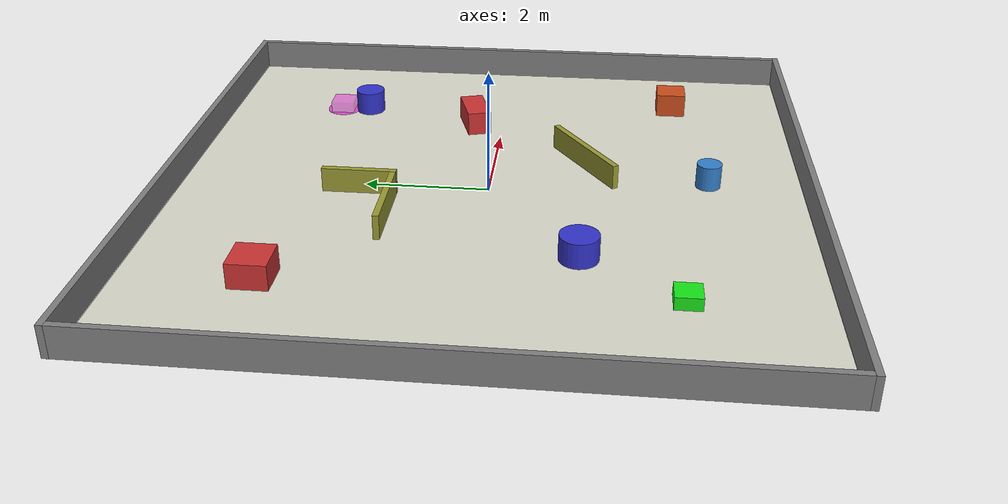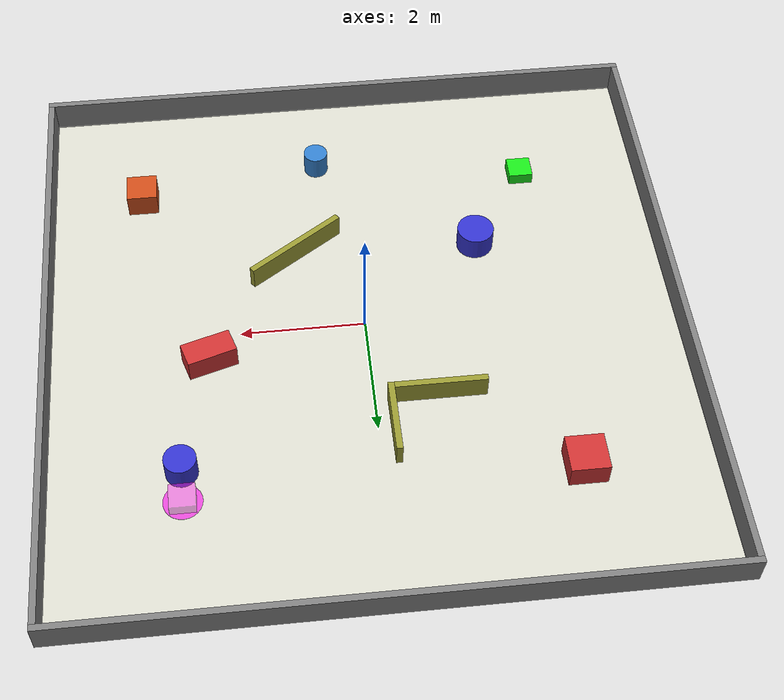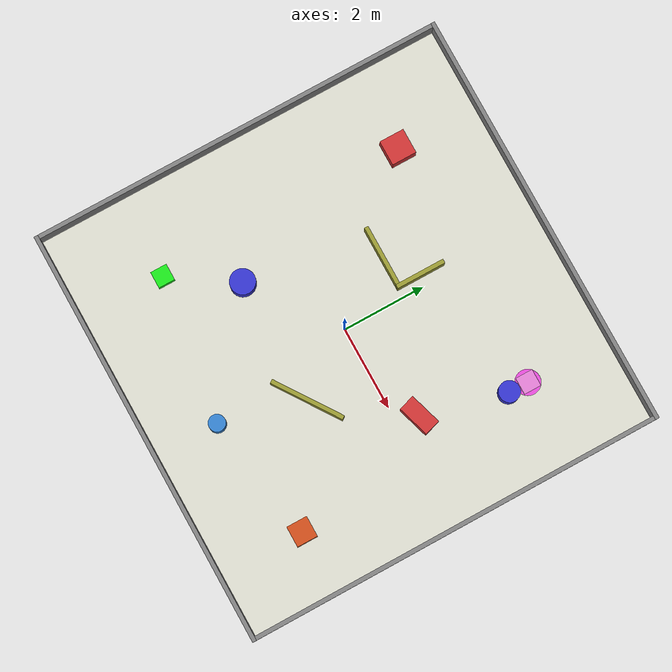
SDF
<?xml version="1.0" ?>
<sdf version="1.6">
  <world name="swarm_arena">

    <!-- Physics -->
    <physics type="ode">
      <real_time_update_rate>1000.0</real_time_update_rate>
      <!-- 1000 updates/s * 3 ms/step gives a 3.0 target RTF. -->
      <max_step_size>0.003</max_step_size>
      <real_time_factor>3.0</real_time_factor>
      <ode>
        <solver>
          <type>quick</type>
          <iters>50</iters>
          <precon_iters>0</precon_iters>
          <sor>1.400000</sor>
          <use_dynamic_moi_rescaling>1</use_dynamic_moi_rescaling>
        </solver>
        <constraints>
          <cfm>0.00001</cfm>
          <erp>0.2</erp>
          <contact_max_correcting_vel>10.0</contact_max_correcting_vel>
          <contact_surface_layer>0.001</contact_surface_layer>
        </constraints>
      </ode>
    </physics>

    <!-- Lighting -->
    <include>
      <uri>model://sun</uri>
    </include>

    <!-- Ground plane -->
    <include>
      <uri>model://ground_plane</uri>
    </include>

    <!-- ==================== ARENA FLOOR (visual reference) ==================== -->
    <model name="arena_floor">
      <static>true</static>
      <link name="link">
        <visual name="visual">
          <geometry>
            <plane><normal>0 0 1</normal><size>10 10</size></plane>
          </geometry>
          <material>
            <ambient>0.85 0.85 0.80 1</ambient>
            <diffuse>0.85 0.85 0.80 1</diffuse>
          </material>
        </visual>
      </link>
      <pose>0 0 0.001 0 0 0</pose>
    </model>

    <!-- ==================== ARENA BOUNDARY WALLS ==================== -->
    <!-- North wall -->
    <model name="wall_north">
      <static>true</static>
      <link name="link">
        <collision name="collision">
          <geometry><box><size>10.2 0.1 0.5</size></box></geometry>
        </collision>
        <visual name="visual">
          <geometry><box><size>10.2 0.1 0.5</size></box></geometry>
          <material>
            <ambient>0.4 0.4 0.4 1</ambient>
            <diffuse>0.5 0.5 0.5 1</diffuse>
          </material>
        </visual>
      </link>
      <pose>0 5.05 0.25 0 0 0</pose>
    </model>

    <!-- South wall -->
    <model name="wall_south">
      <static>true</static>
      <link name="link">
        <collision name="collision">
          <geometry><box><size>10.2 0.1 0.5</size></box></geometry>
        </collision>
        <visual name="visual">
          <geometry><box><size>10.2 0.1 0.5</size></box></geometry>
          <material>
            <ambient>0.4 0.4 0.4 1</ambient>
            <diffuse>0.5 0.5 0.5 1</diffuse>
          </material>
        </visual>
      </link>
      <pose>0 -5.05 0.25 0 0 0</pose>
    </model>

    <!-- East wall -->
    <model name="wall_east">
      <static>true</static>
      <link name="link">
        <collision name="collision">
          <geometry><box><size>0.1 10.0 0.5</size></box></geometry>
        </collision>
        <visual name="visual">
          <geometry><box><size>0.1 10.0 0.5</size></box></geometry>
          <material>
            <ambient>0.4 0.4 0.4 1</ambient>
            <diffuse>0.5 0.5 0.5 1</diffuse>
          </material>
        </visual>
      </link>
      <pose>5.05 0 0.25 0 0 0</pose>
    </model>

    <!-- West wall -->
    <model name="wall_west">
      <static>true</static>
      <link name="link">
        <collision name="collision">
          <geometry><box><size>0.1 10.0 0.5</size></box></geometry>
        </collision>
        <visual name="visual">
          <geometry><box><size>0.1 10.0 0.5</size></box></geometry>
          <material>
            <ambient>0.4 0.4 0.4 1</ambient>
            <diffuse>0.5 0.5 0.5 1</diffuse>
          </material>
        </visual>
      </link>
      <pose>-5.05 0 0.25 0 0 0</pose>
    </model>

    <!-- ==================== STATIC OBSTACLES ==================== -->

    <!-- Box obstacle 1 (top-left area) -->
    <model name="obstacle_box_1">
      <static>true</static>
      <link name="link">
        <collision name="collision">
          <geometry><box><size>0.6 0.6 0.4</size></box></geometry>
        </collision>
        <visual name="visual">
          <geometry><box><size>0.6 0.6 0.4</size></box></geometry>
          <material>
            <ambient>0.8 0.2 0.2 1</ambient>
            <diffuse>0.8 0.2 0.2 1</diffuse>
          </material>
        </visual>
      </link>
      <pose>-3.0 3.0 0.2 0 0 0</pose>
    </model>

    <!-- Box obstacle 2 (center-right) -->
    <model name="obstacle_box_2">
      <static>true</static>
      <link name="link">
        <collision name="collision">
          <geometry><box><size>0.8 0.4 0.4</size></box></geometry>
        </collision>
        <visual name="visual">
          <geometry><box><size>0.8 0.4 0.4</size></box></geometry>
          <material>
            <ambient>0.8 0.2 0.2 1</ambient>
            <diffuse>0.8 0.2 0.2 1</diffuse>
          </material>
        </visual>
      </link>
      <pose>2.5 0.5 0.2 0 0 0.3</pose>
    </model>

    <!-- Box obstacle 3 (bottom-right) -->
    <model name="obstacle_box_3">
      <static>true</static>
      <link name="link">
        <collision name="collision">
          <geometry><box><size>0.5 0.5 0.4</size></box></geometry>
        </collision>
        <visual name="visual">
          <geometry><box><size>0.5 0.5 0.4</size></box></geometry>
          <material>
            <ambient>0.8 0.3 0.1 1</ambient>
            <diffuse>0.8 0.3 0.1 1</diffuse>
          </material>
        </visual>
      </link>
      <pose>3.5 -3.0 0.2 0 0 0</pose>
    </model>

    <!-- Cylinder obstacle 1 (top-right) -->
    <model name="obstacle_cyl_1">
      <static>true</static>
      <link name="link">
        <collision name="collision">
          <geometry><cylinder><radius>0.25</radius><length>0.4</length></cylinder></geometry>
        </collision>
        <visual name="visual">
          <geometry><cylinder><radius>0.25</radius><length>0.4</length></cylinder></geometry>
          <material>
            <ambient>0.2 0.2 0.8 1</ambient>
            <diffuse>0.2 0.2 0.8 1</diffuse>
          </material>
        </visual>
      </link>
      <pose>3.0 2.5 0.2 0 0 0</pose>
    </model>

    <!-- Cylinder obstacle 2 (center-left) -->
    <model name="obstacle_cyl_2">
      <static>true</static>
      <link name="link">
        <collision name="collision">
          <geometry><cylinder><radius>0.3</radius><length>0.4</length></cylinder></geometry>
        </collision>
        <visual name="visual">
          <geometry><cylinder><radius>0.3</radius><length>0.4</length></cylinder></geometry>
          <material>
            <ambient>0.2 0.2 0.8 1</ambient>
            <diffuse>0.2 0.2 0.8 1</diffuse>
          </material>
        </visual>
      </link>
      <pose>-2.0 -1.5 0.2 0 0 0</pose>
    </model>

    <!-- Cylinder obstacle 3 (bottom-center) -->
    <model name="obstacle_cyl_3">
      <static>true</static>
      <link name="link">
        <collision name="collision">
          <geometry><cylinder><radius>0.2</radius><length>0.4</length></cylinder></geometry>
        </collision>
        <visual name="visual">
          <geometry><cylinder><radius>0.2</radius><length>0.4</length></cylinder></geometry>
          <material>
            <ambient>0.2 0.5 0.8 1</ambient>
            <diffuse>0.2 0.5 0.8 1</diffuse>
          </material>
        </visual>
      </link>
      <pose>0.5 -3.5 0.2 0 0 0</pose>
    </model>

    <!-- Wall obstacle 1 (L-shaped barrier, horizontal part) -->
    <model name="obstacle_wall_1">
      <static>true</static>
      <link name="link">
        <collision name="collision">
          <geometry><box><size>1.5 0.1 0.4</size></box></geometry>
        </collision>
        <visual name="visual">
          <geometry><box><size>1.5 0.1 0.4</size></box></geometry>
          <material>
            <ambient>0.6 0.6 0.2 1</ambient>
            <diffuse>0.6 0.6 0.2 1</diffuse>
          </material>
        </visual>
      </link>
      <pose>-1.0 1.5 0.2 0 0 0</pose>
    </model>

    <!-- Wall obstacle 2 (L-shaped barrier, vertical part) -->
    <model name="obstacle_wall_2">
      <static>true</static>
      <link name="link">
        <collision name="collision">
          <geometry><box><size>0.1 1.2 0.4</size></box></geometry>
        </collision>
        <visual name="visual">
          <geometry><box><size>0.1 1.2 0.4</size></box></geometry>
          <material>
            <ambient>0.6 0.6 0.2 1</ambient>
            <diffuse>0.6 0.6 0.2 1</diffuse>
          </material>
        </visual>
      </link>
      <pose>-0.25 2.05 0.2 0 0 0</pose>
    </model>

    <!-- Wall obstacle 3 (diagonal barrier) -->
    <model name="obstacle_wall_3">
      <static>true</static>
      <link name="link">
        <collision name="collision">
          <geometry><box><size>1.8 0.1 0.4</size></box></geometry>
        </collision>
        <visual name="visual">
          <geometry><box><size>1.8 0.1 0.4</size></box></geometry>
          <material>
            <ambient>0.6 0.6 0.2 1</ambient>
            <diffuse>0.6 0.6 0.2 1</diffuse>
          </material>
        </visual>
      </link>
      <pose>1.0 -1.5 0.2 0 0 0.6</pose>
    </model>

    <!-- ==================== TRANSPORT OBJECT (pushable) ==================== -->
    <!-- This object has physics enabled so robots can push it -->
    <model name="transport_object">
      <link name="link">
        <velocity_decay>
          <linear>0.002</linear>
          <angular>0.005</angular>
        </velocity_decay>
        <inertial>
          <!-- Keep the practice crate light enough for one Burger to start
               with steady wheel force; larger fleets still share the load. -->
          <mass>0.25</mass>
          <inertia>
            <ixx>0.004167</ixx><ixy>0</ixy><ixz>0</ixz>
            <iyy>0.004167</iyy><iyz>0</iyz>
            <izz>0.006667</izz>
          </inertia>
        </inertial>
        <collision name="collision">
          <geometry><box><size>0.4 0.4 0.2</size></box></geometry>
          <surface>
            <friction>
              <ode>
                <!-- Low floor friction prevents impact-driven stick-slip at
                     the first contact while preserving a visible payload. -->
                <mu>0.05</mu>
                <mu2>0.05</mu2>
              </ode>
            </friction>
            <contact>
              <ode>
                <max_vel>0.02</max_vel>
                <min_depth>0.001</min_depth>
              </ode>
            </contact>
          </surface>
        </collision>
        <visual name="visual">
          <geometry><box><size>0.4 0.4 0.2</size></box></geometry>
          <material>
            <ambient>0.1 0.8 0.1 1</ambient>
            <diffuse>0.1 0.9 0.1 1</diffuse>
          </material>
        </visual>
      </link>
      <pose>-3.0 -3.0 0.1 0 0 0</pose>
    </model>

    <!-- ==================== TRANSPORT TARGET (visual only) ==================== -->
    <model name="target_marker">
      <static>false</static>
      <link name="link">
        <gravity>false</gravity>
        <kinematic>true</kinematic>
        <visual name="target_footprint">
          <pose>0 0 0.006 0 0 0</pose>
          <cast_shadows>false</cast_shadows>
          <geometry><cylinder><radius>0.3</radius><length>0.01</length></cylinder></geometry>
          <material>
            <ambient>0.95 0.10 0.90 1.0</ambient>
            <diffuse>0.95 0.10 0.90 1.0</diffuse>
            <emissive>0.30 0.02 0.28 1.0</emissive>
          </material>
          <transparency>0.30</transparency>
        </visual>
        <visual name="payload_ghost">
          <pose>0 0 0.10 0 0 0</pose>
          <cast_shadows>false</cast_shadows>
          <geometry><box><size>0.4 0.4 0.2</size></box></geometry>
          <material>
            <ambient>0.95 0.10 0.90 1.0</ambient>
            <diffuse>0.95 0.10 0.90 1.0</diffuse>
            <emissive>0.24 0.02 0.22 1.0</emissive>
          </material>
          <transparency>0.55</transparency>
        </visual>
      </link>
      <pose>3.0 3.0 0.0 0 0 0</pose>
    </model>

    <!-- Camera position for nice default view -->
    <gui fullscreen="0">
      <camera name="user_camera">
        <!-- Keep the complete -4..4 task area visible, including target ghosts. -->
        <pose>0 -14.4 12 0 0.72 1.5708</pose>
        <view_controller>orbit</view_controller>
      </camera>
    </gui>

  </world>
</sdf>
